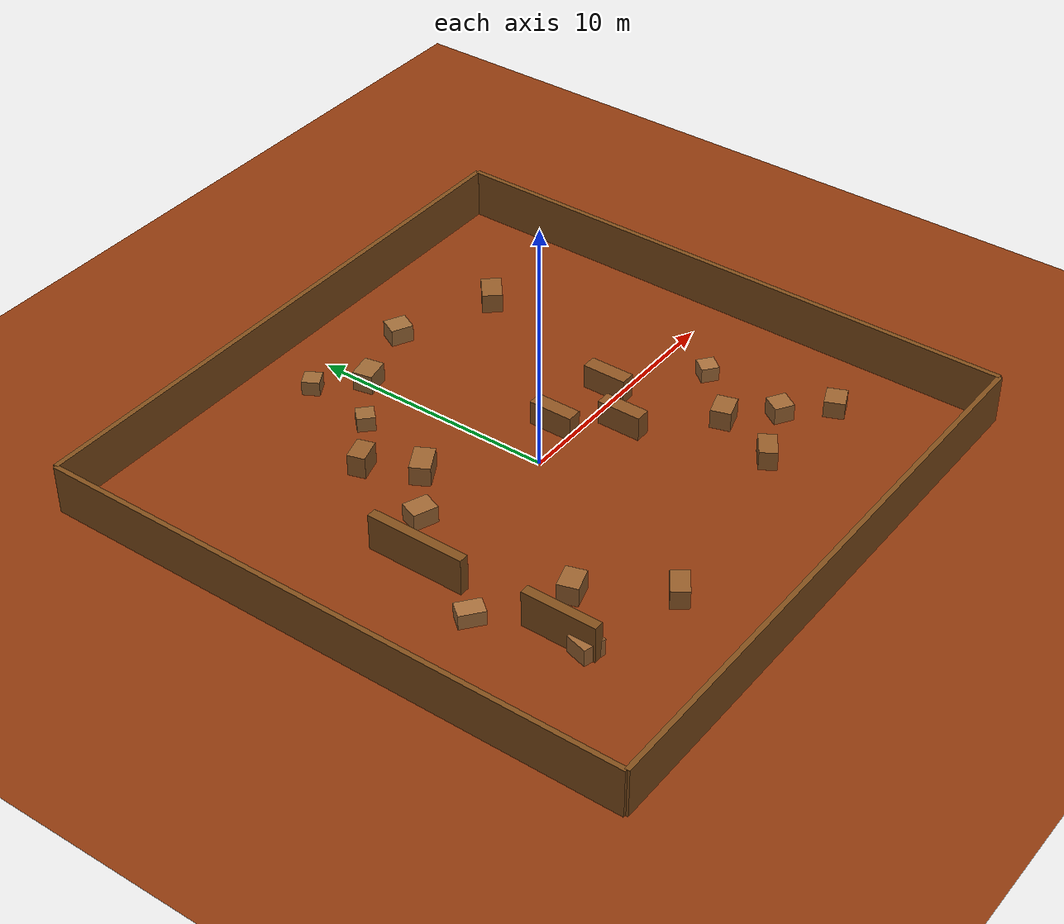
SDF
<?xml version="1.0"?>
<sdf version="1.6">
  <world name="level_3">

    <physics name="default_physics" type="ode">
      <max_step_size>0.001</max_step_size>
      <real_time_factor>1</real_time_factor>
      <real_time_update_rate>1000</real_time_update_rate>
    </physics>

    <light name="sun" type="directional">
      <cast_shadows>true</cast_shadows>
      <pose>0 0 100 0 -0 0</pose>
      <diffuse>0.8 0.5 0.3 1</diffuse>
      <specular>0.2 0.2 0.2 1</specular>
      <attenuation>
        <range>1000</range>
        <constant>0.9</constant>
        <linear>0.01</linear>
        <quadratic>0.001</quadratic>
      </attenuation>
      <direction>-0.5 0.5 -1</direction>
    </light>

    <!-- Darker Mars ground for difficulty -->
    <model name="ground_plane">
      <static>true</static>
      <link name="link">
        <collision name="collision">
          <geometry>
            <plane><normal>0 0 1</normal><size>50 50</size></plane>
          </geometry>
          <surface>
            <friction><ode><mu>0.9</mu><mu2>0.9</mu2></ode></friction>
          </surface>
        </collision>
        <visual name="visual">
          <geometry>
            <plane><normal>0 0 1</normal><size>50 50</size></plane>
          </geometry>
          <material>
            <ambient>0.55 0.22 0.05 1</ambient>
            <diffuse>0.55 0.22 0.05 1</diffuse>
          </material>
        </visual>
      </link>
    </model>

    <!-- Boundary walls -->
    <model name="wall_north"><static>true</static><pose>0 12 1 0 0 0</pose>
      <link name="link">
        <collision name="collision"><geometry><box><size>24 0.2 2</size></box></geometry></collision>
        <visual name="visual"><geometry><box><size>24 0.2 2</size></box></geometry><material><ambient>0.5 0.3 0.1 1</ambient></material></visual>
      </link>
    </model>
    <model name="wall_south"><static>true</static><pose>0 -12 1 0 0 0</pose>
      <link name="link">
        <collision name="collision"><geometry><box><size>24 0.2 2</size></box></geometry></collision>
        <visual name="visual"><geometry><box><size>24 0.2 2</size></box></geometry><material><ambient>0.5 0.3 0.1 1</ambient></material></visual>
      </link>
    </model>
    <model name="wall_east"><static>true</static><pose>12 0 1 0 0 0</pose>
      <link name="link">
        <collision name="collision"><geometry><box><size>0.2 24 2</size></box></geometry></collision>
        <visual name="visual"><geometry><box><size>0.2 24 2</size></box></geometry><material><ambient>0.5 0.3 0.1 1</ambient></material></visual>
      </link>
    </model>
    <model name="wall_west"><static>true</static><pose>-12 0 1 0 0 0</pose>
      <link name="link">
        <collision name="collision"><geometry><box><size>0.2 24 2</size></box></geometry></collision>
        <visual name="visual"><geometry><box><size>0.2 24 2</size></box></geometry><material><ambient>0.5 0.3 0.1 1</ambient></material></visual>
      </link>
    </model>

    <!-- LEVEL 3 OBSTACLES: 22 obstacles forming slalom corridors + tight zones -->

    <!-- Zone A: Slalom corridor near start -->
    <model name="s_a1"><static>true</static><pose>2.0 0.8 0.5 0 0 0</pose>
      <link name="link"><collision name="collision"><geometry><box><size>0.6 1.8 1.0</size></box></geometry></collision>
        <visual name="visual"><geometry><box><size>0.6 1.8 1.0</size></box></geometry><material><ambient>0.55 0.33 0.13 1</ambient></material></visual>
      </link>
    </model>
    <model name="s_a2"><static>true</static><pose>3.5 -1.2 0.5 0 0 0</pose>
      <link name="link"><collision name="collision"><geometry><box><size>0.6 1.8 1.0</size></box></geometry></collision>
        <visual name="visual"><geometry><box><size>0.6 1.8 1.0</size></box></geometry><material><ambient>0.55 0.33 0.13 1</ambient></material></visual>
      </link>
    </model>
    <model name="s_a3"><static>true</static><pose>5.0 0.5 0.5 0 0 0</pose>
      <link name="link"><collision name="collision"><geometry><box><size>0.6 1.8 1.0</size></box></geometry></collision>
        <visual name="visual"><geometry><box><size>0.6 1.8 1.0</size></box></geometry><material><ambient>0.55 0.33 0.13 1</ambient></material></visual>
      </link>
    </model>

    <!-- Zone B: Rock field left side -->
    <model name="r_b1"><static>true</static><pose>-3.0 3.0 0.4 0 0 0.5</pose>
      <link name="link"><collision name="collision"><geometry><box><size>1.2 0.8 0.8</size></box></geometry></collision>
        <visual name="visual"><geometry><box><size>1.2 0.8 0.8</size></box></geometry><material><ambient>0.60 0.38 0.18 1</ambient></material></visual>
      </link>
    </model>
    <model name="r_b2"><static>true</static><pose>-5.0 1.5 0.35 0 0 1.2</pose>
      <link name="link"><collision name="collision"><geometry><box><size>0.8 1.0 0.7</size></box></geometry></collision>
        <visual name="visual"><geometry><box><size>0.8 1.0 0.7</size></box></geometry><material><ambient>0.62 0.40 0.20 1</ambient></material></visual>
      </link>
    </model>
    <model name="r_b3"><static>true</static><pose>-4.0 5.0 0.45 0 0 0.3</pose>
      <link name="link"><collision name="collision"><geometry><box><size>1.0 0.7 0.9</size></box></geometry></collision>
        <visual name="visual"><geometry><box><size>1.0 0.7 0.9</size></box></geometry><material><ambient>0.58 0.36 0.16 1</ambient></material></visual>
      </link>
    </model>
    <model name="r_b4"><static>true</static><pose>-2.0 6.5 0.3 0 0 0.8</pose>
      <link name="link"><collision name="collision"><geometry><box><size>0.7 0.7 0.6</size></box></geometry></collision>
        <visual name="visual"><geometry><box><size>0.7 0.7 0.6</size></box></geometry><material><ambient>0.60 0.40 0.20 1</ambient></material></visual>
      </link>
    </model>

    <!-- Zone C: Long barrier wall with narrow gap -->
    <model name="barrier_c1"><static>true</static><pose>-7.0 0.0 0.75 0 0 1.5708</pose>
      <link name="link"><collision name="collision"><geometry><box><size>4.0 0.4 1.5</size></box></geometry></collision>
        <visual name="visual"><geometry><box><size>4.0 0.4 1.5</size></box></geometry><material><ambient>0.50 0.30 0.10 1</ambient></material></visual>
      </link>
    </model>
    <model name="barrier_c2"><static>true</static><pose>-7.0 -6.0 0.75 0 0 1.5708</pose>
      <link name="link"><collision name="collision"><geometry><box><size>3.0 0.4 1.5</size></box></geometry></collision>
        <visual name="visual"><geometry><box><size>3.0 0.4 1.5</size></box></geometry><material><ambient>0.50 0.30 0.10 1</ambient></material></visual>
      </link>
    </model>

    <!-- Zone D: Dense rock field bottom right -->
    <model name="r_d1"><static>true</static><pose>6.0 -4.0 0.4 0 0 0.3</pose>
      <link name="link"><collision name="collision"><geometry><box><size>1.0 0.8 0.8</size></box></geometry></collision>
        <visual name="visual"><geometry><box><size>1.0 0.8 0.8</size></box></geometry><material><ambient>0.60 0.38 0.18 1</ambient></material></visual>
      </link>
    </model>
    <model name="r_d2"><static>true</static><pose>7.5 -5.5 0.35 0 0 1.0</pose>
      <link name="link"><collision name="collision"><geometry><box><size>0.8 0.8 0.7</size></box></geometry></collision>
        <visual name="visual"><geometry><box><size>0.8 0.8 0.7</size></box></geometry><material><ambient>0.62 0.40 0.20 1</ambient></material></visual>
      </link>
    </model>
    <model name="r_d3"><static>true</static><pose>5.0 -6.5 0.4 0 0 0.6</pose>
      <link name="link"><collision name="collision"><geometry><box><size>1.1 0.7 0.8</size></box></geometry></collision>
        <visual name="visual"><geometry><box><size>1.1 0.7 0.8</size></box></geometry><material><ambient>0.58 0.36 0.16 1</ambient></material></visual>
      </link>
    </model>
    <model name="r_d4"><static>true</static><pose>8.0 -2.0 0.3 0 0 0.9</pose>
      <link name="link"><collision name="collision"><geometry><box><size>0.7 0.7 0.6</size></box></geometry></collision>
        <visual name="visual"><geometry><box><size>0.7 0.7 0.6</size></box></geometry><material><ambient>0.65 0.43 0.23 1</ambient></material></visual>
      </link>
    </model>
    <model name="r_d5"><static>true</static><pose>9.0 -7.0 0.35 0 0 0.4</pose>
      <link name="link"><collision name="collision"><geometry><box><size>0.9 0.8 0.7</size></box></geometry></collision>
        <visual name="visual"><geometry><box><size>0.9 0.8 0.7</size></box></geometry><material><ambient>0.60 0.38 0.18 1</ambient></material></visual>
      </link>
    </model>

    <!-- Zone E: Top field obstacles -->
    <model name="r_e1"><static>true</static><pose>0.0 8.0 0.4 0 0 0.2</pose>
      <link name="link"><collision name="collision"><geometry><box><size>1.0 0.8 0.8</size></box></geometry></collision>
        <visual name="visual"><geometry><box><size>1.0 0.8 0.8</size></box></geometry><material><ambient>0.60 0.40 0.20 1</ambient></material></visual>
      </link>
    </model>
    <model name="r_e2"><static>true</static><pose>3.0 9.0 0.35 0 0 1.1</pose>
      <link name="link"><collision name="collision"><geometry><box><size>0.8 0.9 0.7</size></box></geometry></collision>
        <visual name="visual"><geometry><box><size>0.8 0.9 0.7</size></box></geometry><material><ambient>0.62 0.42 0.22 1</ambient></material></visual>
      </link>
    </model>
    <model name="r_e3"><static>true</static><pose>7.0 7.5 0.4 0 0 0.7</pose>
      <link name="link"><collision name="collision"><geometry><box><size>1.2 0.8 0.8</size></box></geometry></collision>
        <visual name="visual"><geometry><box><size>1.2 0.8 0.8</size></box></geometry><material><ambient>0.58 0.36 0.16 1</ambient></material></visual>
      </link>
    </model>
    <model name="r_e4"><static>true</static><pose>-1.5 9.5 0.3 0 0 0.5</pose>
      <link name="link"><collision name="collision"><geometry><box><size>0.7 0.7 0.6</size></box></geometry></collision>
        <visual name="visual"><geometry><box><size>0.7 0.7 0.6</size></box></geometry><material><ambient>0.60 0.40 0.20 1</ambient></material></visual>
      </link>
    </model>

    <!-- Zone F: Bottom left hazard zone -->
    <model name="r_f1"><static>true</static><pose>-5.0 -5.0 0.4 0 0 0.3</pose>
      <link name="link"><collision name="collision"><geometry><box><size>1.0 0.8 0.8</size></box></geometry></collision>
        <visual name="visual"><geometry><box><size>1.0 0.8 0.8</size></box></geometry><material><ambient>0.60 0.38 0.18 1</ambient></material></visual>
      </link>
    </model>
    <model name="r_f2"><static>true</static><pose>-7.0 -7.0 0.35 0 0 1.3</pose>
      <link name="link"><collision name="collision"><geometry><box><size>0.9 0.9 0.7</size></box></geometry></collision>
        <visual name="visual"><geometry><box><size>0.9 0.9 0.7</size></box></geometry><material><ambient>0.62 0.40 0.20 1</ambient></material></visual>
      </link>
    </model>
    <model name="r_f3"><static>true</static><pose>-3.0 -8.0 0.4 0 0 0.6</pose>
      <link name="link"><collision name="collision"><geometry><box><size>1.1 0.7 0.8</size></box></geometry></collision>
        <visual name="visual"><geometry><box><size>1.1 0.7 0.8</size></box></geometry><material><ambient>0.58 0.36 0.16 1</ambient></material></visual>
      </link>
    </model>
    <model name="r_f4"><static>true</static><pose>-8.0 -3.0 0.3 0 0 0.9</pose>
      <link name="link"><collision name="collision"><geometry><box><size>0.7 1.0 0.6</size></box></geometry></collision>
        <visual name="visual"><geometry><box><size>0.7 1.0 0.6</size></box></geometry><material><ambient>0.65 0.43 0.23 1</ambient></material></visual>
      </link>
    </model>

    <plugin name="gazebo_ros_state" filename="libgazebo_ros_state.so">
      <ros><namespace>/</namespace></ros>
      <update_rate>10.0</update_rate>
    </plugin>

  </world>
</sdf>
